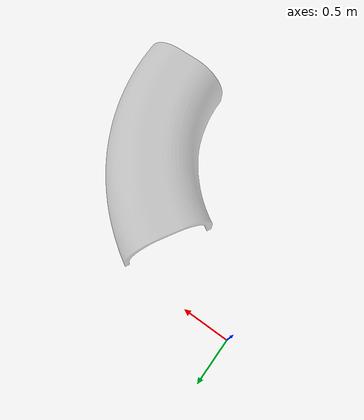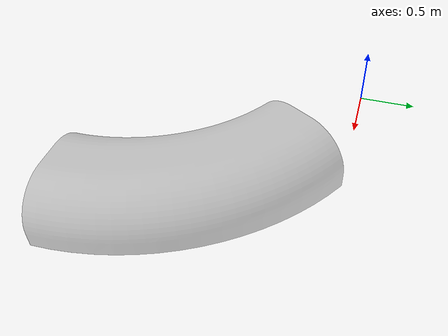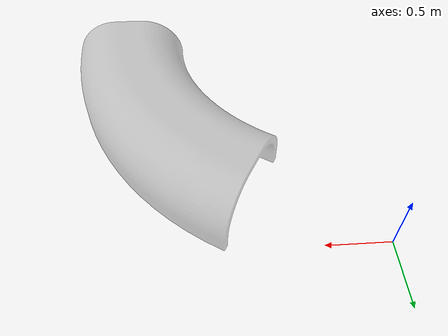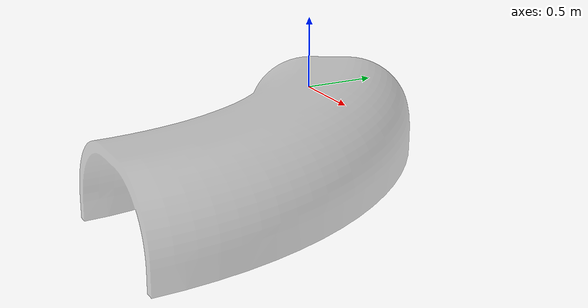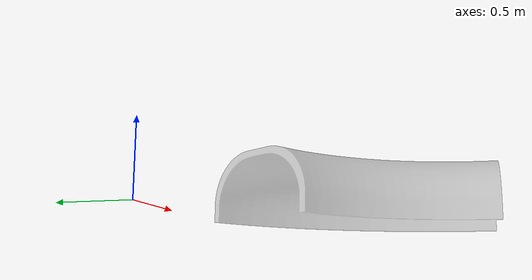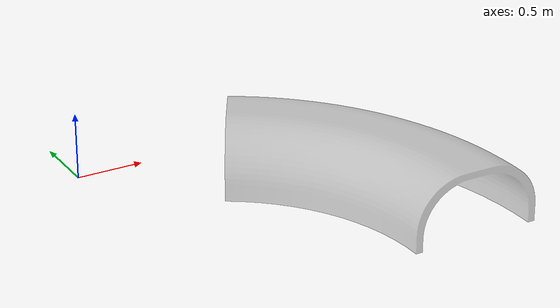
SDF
<?xml version='1.0'?>
<sdf version='1.6'>
  <model name='tunnel'>
    <link name='link_0'>
      <pose frame=''>0 0 0 1.5708 -0 0</pose> <!-- 90 deg rotation-->
      <gravity>1</gravity>
      <self_collide>0</self_collide>
      <kinematic>0</kinematic>
      <enable_wind>0</enable_wind>
      <visual name='visual'>
        <pose frame=''>0 0 0 0 -0 0</pose>
        <geometry>
          <mesh>
            <uri>model://tunnel/meshes/tunnel.dae</uri>
            <scale>0.1 0.1 0.1</scale>
          </mesh>
        </geometry>

        <material>
          <lighting>1</lighting>
          <script>
            <uri>file://media/materials/scripts/gazebo.material</uri>
            <name>Gazebo/Gray</name>
          </script>
          <shader type='vertex'>
            <normal_map>__default__</normal_map>
          </shader>
          <ambient>0.3 0.3 0.3 1</ambient>
          <diffuse>0.7 0.7 0.7 1</diffuse>
          <specular>0.01 0.01 0.01 1</specular>
          <emissive>0 0 0 1</emissive>
        </material>
        <transparency>0.5</transparency>
        <cast_shadows>1</cast_shadows>
      </visual>
      <collision name='collision'>

      <laser_retro>1000</laser_retro> <!-- Added laser_retro -->
    <max_contacts>10</max_contacts>
    <pose frame=''>0 0 0 0 -0 0</pose>
    <geometry>
      <mesh>
        <uri>model://tunnel/meshes/tunnel.dae</uri>
        <scale>0.1 0.1 0.1</scale> <!-- Adjusted scale to match visual -->
      </mesh>
    </geometry>

        <surface>
          <friction>
            <ode>
              <mu>1</mu>
              <mu2>1</mu2>
              <fdir1>0 0 0</fdir1>
              <slip1>0</slip1>
              <slip2>0</slip2>
            </ode>
            <torsional>
              <coefficient>1</coefficient>
              <patch_radius>0</patch_radius>
              <surface_radius>0</surface_radius>
              <use_patch_radius>1</use_patch_radius>
              <ode>
                <slip>0</slip>
              </ode>
            </torsional>
          </friction>
          <bounce>
            <restitution_coefficient>0</restitution_coefficient>
            <threshold>1e+06</threshold>
          </bounce>
          <contact>
            <collide_without_contact>0</collide_without_contact>
            <collide_without_contact_bitmask>1</collide_without_contact_bitmask>
            <collide_bitmask>1</collide_bitmask>
            <ode>
              <soft_cfm>0</soft_cfm>
              <soft_erp>0.2</soft_erp>
              <kp>1e+13</kp>
              <kd>1</kd>
              <max_vel>0.01</max_vel>
              <min_depth>0</min_depth>
            </ode>
            <bullet>
              <split_impulse>1</split_impulse>
              <split_impulse_penetration_threshold>-0.01</split_impulse_penetration_threshold>
              <soft_cfm>0</soft_cfm>
              <soft_erp>0.2</soft_erp>
              <kp>1e+13</kp>
              <kd>1</kd>
            </bullet>
          </contact>
        </surface>
      </collision>
    </link>
    <static>1</static>
    <allow_auto_disable>1</allow_auto_disable>
  </model>
</sdf>
